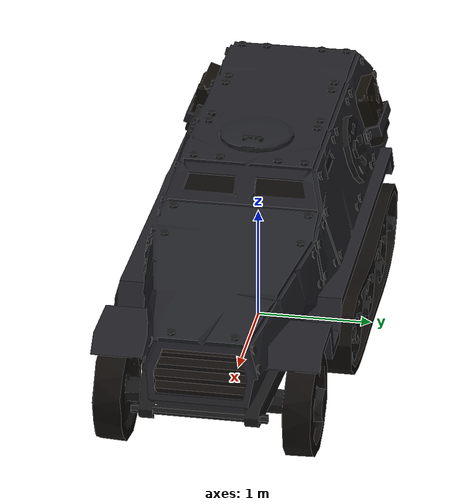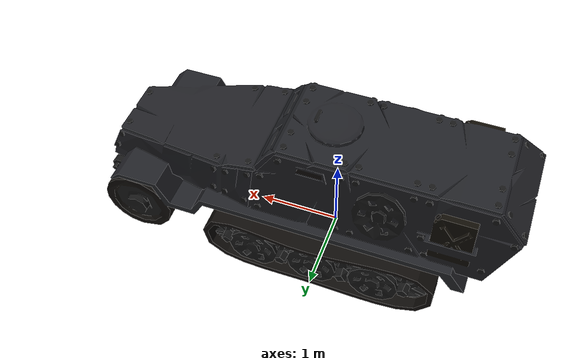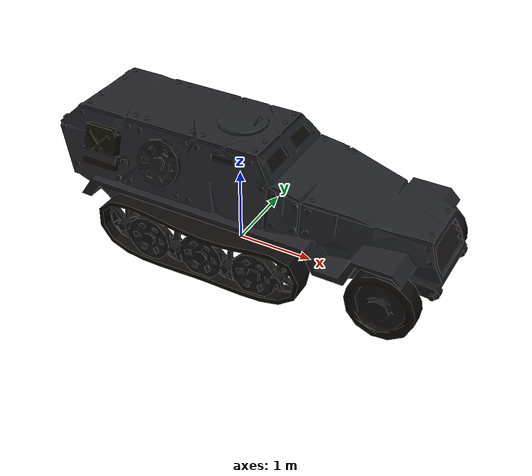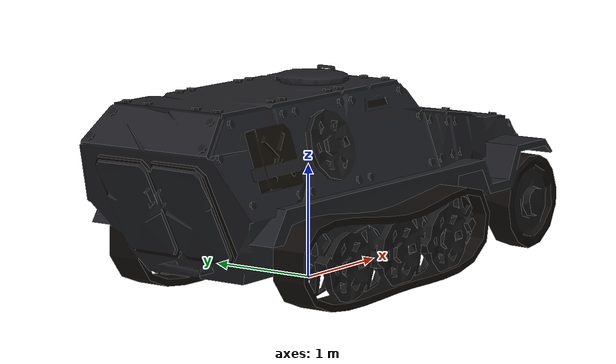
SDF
<?xml version='1.0'?>
<sdf version='1.5'>
  <model name='armored car'>
    <static>true</static>
    <link name="armored_car">

        <visual name="visual">
        <geometry>
                <mesh>
                    <uri>model://armored_car/meshes/armored_car.dae</uri>
                </mesh>
            </geometry>
        </visual>
         <collision name="collision">
                <geometry>
                <mesh>
                    <uri>model://armored_car/meshes/armored_car.dae</uri>
                </mesh>
            </geometry>
        </collision>

    </link>
  </model>
</sdf>
~
